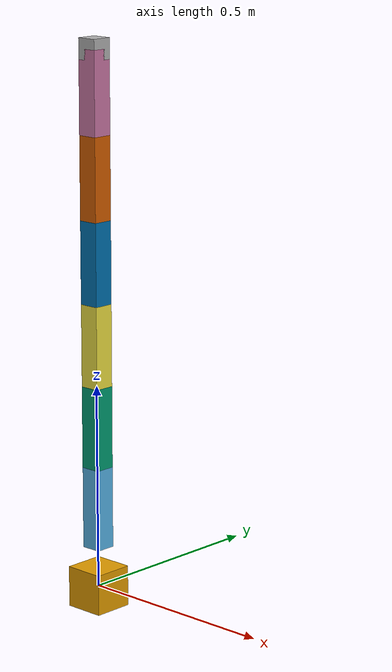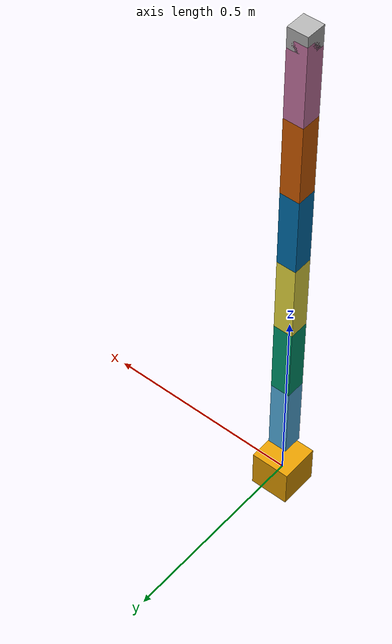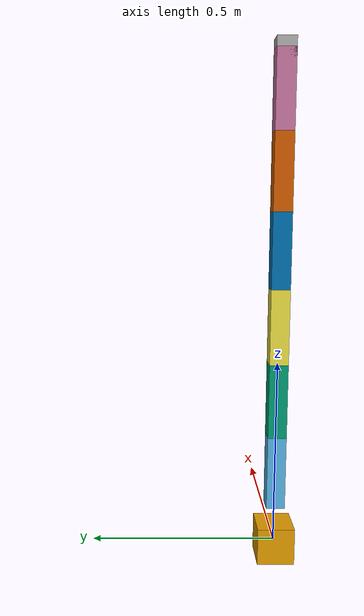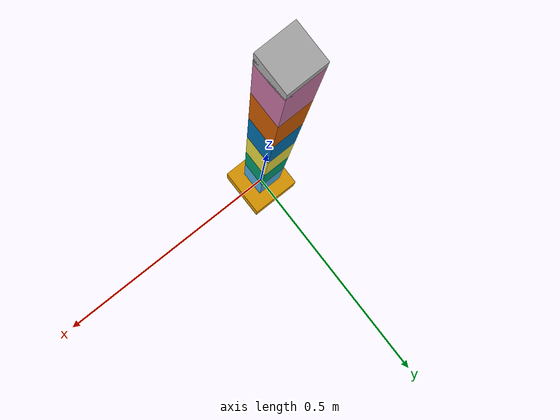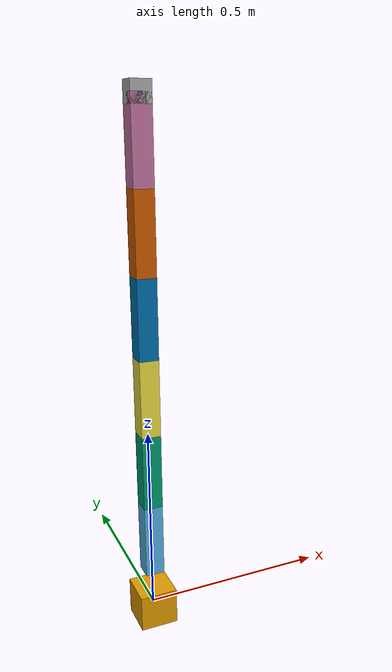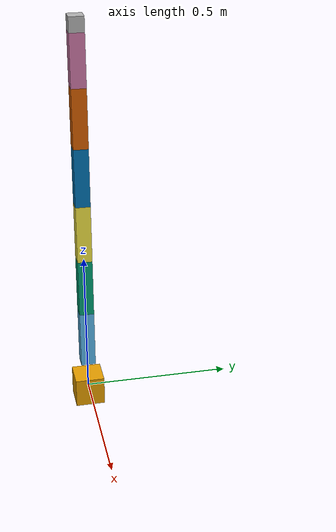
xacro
<?xml version="1.0"?>
<robot xmlns:xacro="http://www.ros.org/wiki/xacro" name="pegasus_arm">
    <xacro:arg name="initial_positions_file" default="initial_positions.yaml" />

    <!-- Import pegasus_arm urdf file -->
    <xacro:include filename="$(find pegasus_arm_description)/URDF/my_robot.urdf" />

    <!-- Import control_xacro -->
    <xacro:include filename="pegasus_arm.ros2_control.xacro" />

    <xacro:pegasus_arm_ros2_control name="FakeSystem" initial_positions_file="$(arg initial_positions_file)"/>

</robot>

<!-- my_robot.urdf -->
<!-- |    This document was autogenerated by xacro from pegasus_arm.urdf.xacro         | -->
<!-- |    EDITING THIS FILE BY HAND IS NOT RECOMMENDED                                 | -->
<robot name="pegasus_arm">
  <!-- Links -->
  <link name="base_link">
    <inertial>
      <origin rpy="0 0 0" xyz="0 0 0"/>
      <mass value="1.0"/>
      <inertia ixx="0.01" ixy="0.0" ixz="0.0" iyy="0.01" iyz="0.0" izz="0.01"/>
    </inertial>
    <visual>
      <origin rpy="0 0 0" xyz="0 0 0"/>
      <geometry>
        <box size="0.1 0.1 0.1"/>
      </geometry>
    </visual>
    <collision>
      <origin rpy="0 0 0" xyz="0 0 0"/>
      <geometry>
        <box size="0.1 0.1 0.1"/>
      </geometry>
    </collision>
  </link>
  <link name="link1">
    <inertial>
      <origin rpy="0 0 0" xyz="0 0 0.1"/>
      <mass value="0.5"/>
      <inertia ixx="0.005" ixy="0.0" ixz="0.0" iyy="0.005" iyz="0.0" izz="0.005"/>
    </inertial>
    <visual>
      <origin rpy="0 0 0" xyz="0 0 0.1"/>
      <geometry>
        <box size="0.05 0.05 0.2"/>
      </geometry>
    </visual>
    <collision>
      <origin rpy="0 0 0" xyz="0 0 0.1"/>
      <geometry>
        <box size="0.05 0.05 0.2"/>
      </geometry>
    </collision>
  </link>
  <link name="link2">
    <inertial>
      <origin rpy="0 0 0" xyz="0 0 0.1"/>
      <mass value="0.5"/>
      <inertia ixx="0.005" ixy="0.0" ixz="0.0" iyy="0.005" iyz="0.0" izz="0.005"/>
    </inertial>
    <visual>
      <origin rpy="0 0 0" xyz="0 0 0.1"/>
      <geometry>
        <box size="0.05 0.05 0.2"/>
      </geometry>
    </visual>
    <collision>
      <origin rpy="0 0 0" xyz="0 0 0.1"/>
      <geometry>
        <box size="0.05 0.05 0.2"/>
      </geometry>
    </collision>
  </link>
  <link name="link3">
    <inertial>
      <origin rpy="0 0 0" xyz="0 0 0.1"/>
      <mass value="0.5"/>
      <inertia ixx="0.005" ixy="0.0" ixz="0.0" iyy="0.005" iyz="0.0" izz="0.005"/>
    </inertial>
    <visual>
      <origin rpy="0 0 0" xyz="0 0 0.1"/>
      <geometry>
        <box size="0.05 0.05 0.2"/>
      </geometry>
    </visual>
    <collision>
      <origin rpy="0 0 0" xyz="0 0 0.1"/>
      <geometry>
        <box size="0.05 0.05 0.2"/>
      </geometry>
    </collision>
  </link>
  <link name="link4">
    <inertial>
      <origin rpy="0 0 0" xyz="0 0 0.1"/>
      <mass value="0.5"/>
      <inertia ixx="0.005" ixy="0.0" ixz="0.0" iyy="0.005" iyz="0.0" izz="0.005"/>
    </inertial>
    <visual>
      <origin rpy="0 0 0" xyz="0 0 0.1"/>
      <geometry>
        <box size="0.05 0.05 0.2"/>
      </geometry>
    </visual>
    <collision>
      <origin rpy="0 0 0" xyz="0 0 0.1"/>
      <geometry>
        <box size="0.05 0.05 0.2"/>
      </geometry>
    </collision>
  </link>
  <link name="link5">
    <inertial>
      <origin rpy="0 0 0" xyz="0 0 0.1"/>
      <mass value="0.5"/>
      <inertia ixx="0.005" ixy="0.0" ixz="0.0" iyy="0.005" iyz="0.0" izz="0.005"/>
    </inertial>
    <visual>
      <origin rpy="0 0 0" xyz="0 0 0.1"/>
      <geometry>
        <box size="0.05 0.05 0.2"/>
      </geometry>
    </visual>
    <collision>
      <origin rpy="0 0 0" xyz="0 0 0.1"/>
      <geometry>
        <box size="0.05 0.05 0.2"/>
      </geometry>
    </collision>
  </link>
  <link name="link6">
    <inertial>
      <origin rpy="0 0 0" xyz="0 0 0.1"/>
      <mass value="0.5"/>
      <inertia ixx="0.005" ixy="0.0" ixz="0.0" iyy="0.005" iyz="0.0" izz="0.005"/>
    </inertial>
    <visual>
      <origin rpy="0 0 0" xyz="0 0 0.1"/>
      <geometry>
        <box size="0.05 0.05 0.2"/>
      </geometry>
    </visual>
    <collision>
      <origin rpy="0 0 0" xyz="0 0 0.1"/>
      <geometry>
        <box size="0.05 0.05 0.2"/>
      </geometry>
    </collision>
  </link>
  <link name="end_effector_link">
    <inertial>
      <origin rpy="0 0 0" xyz="0 0 0"/>
      <mass value="0.1"/>
      <inertia ixx="0.001" ixy="0.0" ixz="0.0" iyy="0.001" iyz="0.0" izz="0.001"/>
    </inertial>
    <visual>
      <origin rpy="0 0 0" xyz="0 0 0"/>
      <geometry>
        <box size="0.05 0.05 0.05"/>
      </geometry>
    </visual>
    <collision>
      <origin rpy="0 0 0" xyz="0 0 0"/>
      <geometry>
        <box size="0.05 0.05 0.05"/>
      </geometry>
    </collision>
  </link>
  <!-- Joints -->
  <joint name="joint1" type="revolute">
    <parent link="base_link"/>
    <child link="link1"/>
    <origin rpy="0 0 0" xyz="0 0 0.1"/>
    <axis xyz="0 0 1"/>
    <limit effort="10" lower="-1.57" upper="1.57" velocity="1"/>
  </joint>
  <joint name="joint2" type="revolute">
    <parent link="link1"/>
    <child link="link2"/>
    <origin rpy="0 0 0" xyz="0 0 0.2"/>
    <axis xyz="0 0 1"/>
    <limit effort="10" lower="-1.57" upper="1.57" velocity="1"/>
  </joint>
  <joint name="joint3" type="revolute">
    <parent link="link2"/>
    <child link="link3"/>
    <origin rpy="0 0 0" xyz="0 0 0.2"/>
    <axis xyz="0 0 1"/>
    <limit effort="10" lower="-1.57" upper="1.57" velocity="1"/>
  </joint>
  <joint name="joint4" type="revolute">
    <parent link="link3"/>
    <child link="link4"/>
    <origin rpy="0 0 0" xyz="0 0 0.2"/>
    <axis xyz="0 0 1"/>
    <limit effort="10" lower="-1.57" upper="1.57" velocity="1"/>
  </joint>
  <joint name="joint5" type="revolute">
    <parent link="link4"/>
    <child link="link5"/>
    <origin rpy="0 0 0" xyz="0 0 0.2"/>
    <axis xyz="0 0 1"/>
    <limit effort="10" lower="-1.57" upper="1.57" velocity="1"/>
  </joint>
  <joint name="joint6" type="revolute">
    <parent link="link5"/>
    <child link="link6"/>
    <origin rpy="0 0 0" xyz="0 0 0.2"/>
    <axis xyz="0 0 1"/>
    <limit effort="10" lower="-1.57" upper="1.57" velocity="1"/>
  </joint>
  <joint name="joint6_to_end_effector" type="fixed">
    <parent link="link6"/>
    <child link="end_effector_link"/>
    <origin rpy="0 0 0" xyz="0 0 0.2"/>
  </joint>
  <!-- Transmissions -->
  <transmission name="trans1">
    <type>transmission_interface/SimpleTransmission</type>
    <joint name="joint1">
      <hardwareInterface>hardware_interface/PositionJointInterface</hardwareInterface>
    </joint>
    <actuator name="motor1">
      <mechanicalReduction>1</mechanicalReduction>
    </actuator>
  </transmission>
  <transmission name="trans2">
    <type>transmission_interface/SimpleTransmission</type>
    <joint name="joint2">
      <hardwareInterface>hardware_interface/PositionJointInterface</hardwareInterface>
    </joint>
    <actuator name="motor2">
      <mechanicalReduction>1</mechanicalReduction>
    </actuator>
  </transmission>
  <transmission name="trans3">
    <type>transmission_interface/SimpleTransmission</type>
    <joint name="joint3">
      <hardwareInterface>hardware_interface/PositionJointInterface</hardwareInterface>
    </joint>
    <actuator name="motor3">
      <mechanicalReduction>1</mechanicalReduction>
    </actuator>
  </transmission>
  <transmission name="trans4">
    <type>transmission_interface/SimpleTransmission</type>
    <joint name="joint4">
      <hardwareInterface>hardware_interface/PositionJointInterface</hardwareInterface>
    </joint>
    <actuator name="motor4">
      <mechanicalReduction>1</mechanicalReduction>
    </actuator>
  </transmission>
  <transmission name="trans5">
    <type>transmission_interface/SimpleTransmission</type>
    <joint name="joint5">
      <hardwareInterface>hardware_interface/PositionJointInterface</hardwareInterface>
    </joint>
    <actuator name="motor5">
      <mechanicalReduction>1</mechanicalReduction>
    </actuator>
  </transmission>
  <transmission name="trans6">
    <type>transmission_interface/SimpleTransmission</type>
    <joint name="joint6">
      <hardwareInterface>hardware_interface/PositionJointInterface</hardwareInterface>
    </joint>
    <actuator name="motor6">
      <mechanicalReduction>1</mechanicalReduction>
    </actuator>
  </transmission>
  <!-- ros2_control -->
  <ros2_control name="PegasusArm" type="system">
    <hardware>
      <plugin>mock_components/GenericSystem</plugin>
      <param name="use_mock_hardware">true</param>
    </hardware>
    <joint name="joint1">
      <command_interface name="position">
        <param name="min">-1.57</param>
        <param name="max">1.57</param>
      </command_interface>
    </joint>
    <joint name="joint2">
      <command_interface name="position">
        <param name="min">-1.57</param>
        <param name="max">1.57</param>
      </command_interface>
    </joint>
    <joint name="joint3">
      <command_interface name="position">
        <param name="min">-1.57</param>
        <param name="max">1.57</param>
      </command_interface>
    </joint>
    <joint name="joint4">
      <command_interface name="position">
        <param name="min">-1.57</param>
        <param name="max">1.57</param>
      </command_interface>
    </joint>
    <joint name="joint5">
      <command_interface name="position">
        <param name="min">-1.57</param>
        <param name="max">1.57</param>
      </command_interface>
    </joint>
    <joint name="joint6">
      <command_interface name="position">
        <param name="min">-1.57</param>
        <param name="max">1.57</param>
      </command_interface>
    </joint>
  </ros2_control>
  <gazebo>
    <plugin filename="libgazebo_ros_control.so" name="gazebo_ros_control">
      <robotNamespace>/</robotNamespace>
    </plugin>
  </gazebo>
</robot>
